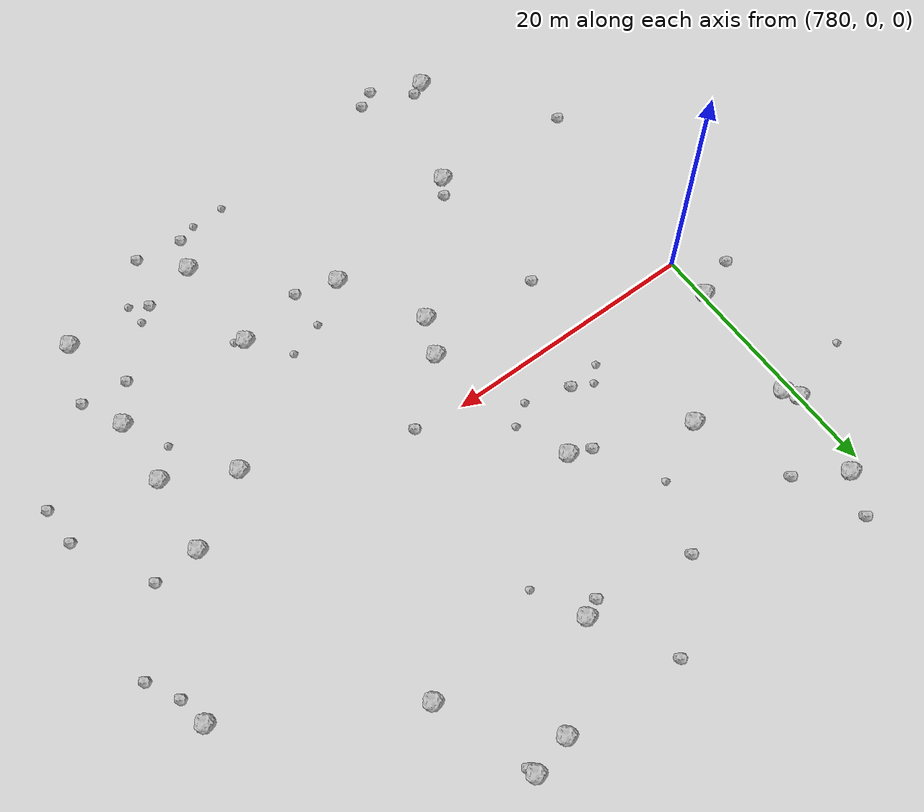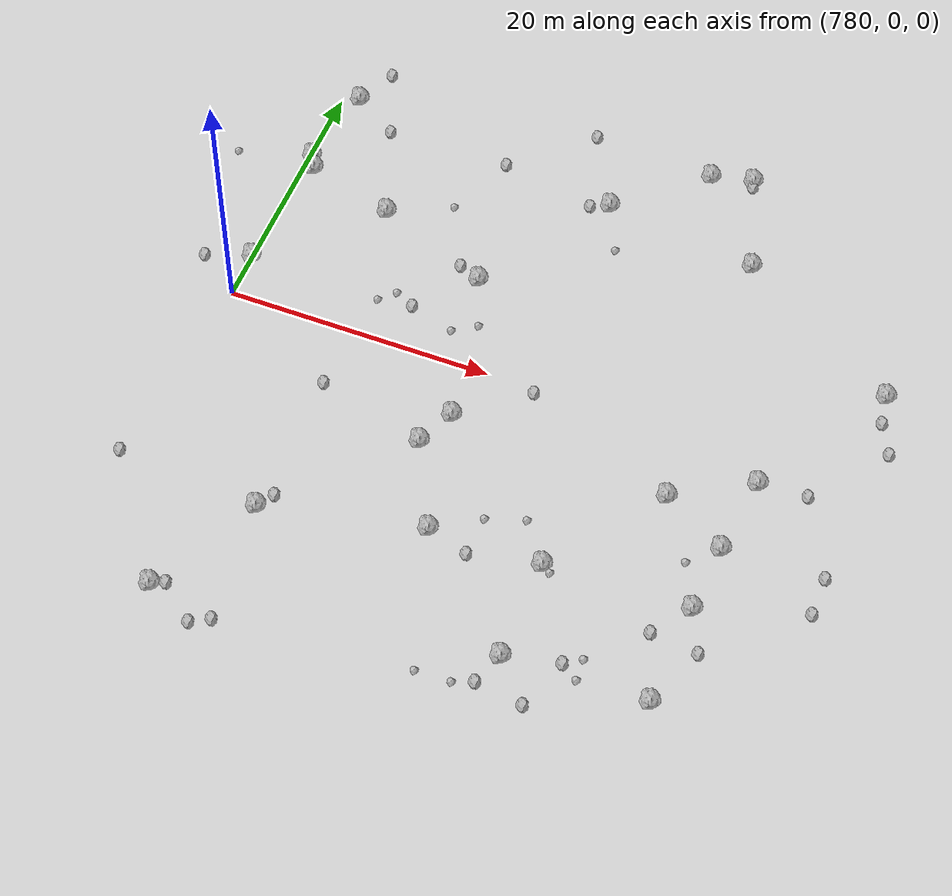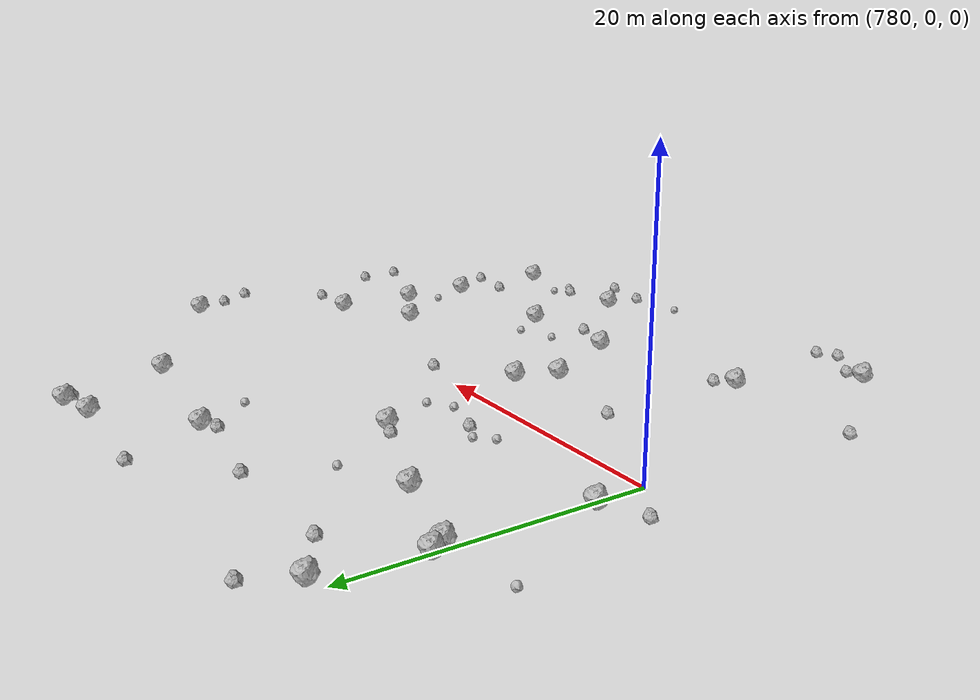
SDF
<sdf version="1.6">
 <world name="default">
  <include><uri>model://sun</uri></include>
  <model name="rock1_20_4">
   <include><uri>model://rock1</uri><pose>785.3664113170223 -24.90609424373964 0.5 0 0 0</pose></include>
  </model>
  <model name="rock1_20_5">
   <include><uri>model://rock1</uri><pose>809.5755338259577 -21.500096827385807 0.5 0 0 0</pose></include>
  </model>
  <model name="rock1_20_6">
   <include><uri>model://rock1</uri><pose>815.5084359711921 -5.317801663872885 0.5 0 0 0</pose></include>
  </model>
  <model name="rock1_20_7">
   <include><uri>model://rock1</uri><pose>820.0311126214174 -21.138334759973652 0.5 0 0 0</pose></include>
  </model>
  <model name="rock1_20_8">
   <include><uri>model://rock1</uri><pose>781.2812456146687 20.592740065764225 0.5 0 0 0</pose></include>
  </model>
  <model name="rock1_20_9">
   <include><uri>model://rock1</uri><pose>809.5288513660752 -13.730973836785545 0.5 0 0 0</pose></include>
  </model>
  <model name="rock1_20_10">
   <include><uri>model://rock1</uri><pose>821.0275776181239 -2.0304280691839622 0.5 0 0 0</pose></include>
  </model>
  <model name="rock1_20_11">
   <include><uri>model://rock1</uri><pose>814.4093221871572 16.122075776265177 0.5 0 0 0</pose></include>
  </model>
  <model name="rock1_20_12">
   <include><uri>model://rock1</uri><pose>797.8102732023145 -7.2851550865501125 0.5 0 0 0</pose></include>
  </model>
  <model name="rock1_20_13">
   <include><uri>model://rock1</uri><pose>799.0665224011852 -4.359351710954094 0.5 0 0 0</pose></include>
  </model>
  <model name="rock1_20_14">
   <include><uri>model://rock1</uri><pose>787.5282440145577 11.089126649374556 0.5 0 0 0</pose></include>
  </model>
  <model name="rock1_20_15">
   <include><uri>model://rock1</uri><pose>827.0752342238704 8.384848651333861 0.5 0 0 0</pose></include>
  </model>
  <model name="rock1_20_16">
   <include><uri>model://rock1</uri><pose>779.990604715093 3.5421797995980384 0.5 0 0 0</pose></include>
  </model>
  <model name="rock1_20_17">
   <include><uri>model://rock1</uri><pose>780.7776208121767 13.012453330870969 0.5 0 0 0</pose></include>
  </model>
  <model name="rock1_20_18">
   <include><uri>model://rock1</uri><pose>789.4445443507831 -16.48787520202778 0.5 0 0 0</pose></include>
  </model>
  <model name="rock1_20_19">
   <include><uri>model://rock1</uri><pose>802.7520912309554 17.695944848059014 0.5 0 0 0</pose></include>
  </model>
  <model name="rock1_20_20">
   <include><uri>model://rock1</uri><pose>780.1793979257385 14.061561354105798 0.5 0 0 0</pose></include>
  </model>
  <model name="rock1_20_21">
   <include><uri>model://rock1</uri><pose>820.1943020609858 -13.315769211444113 0.5 0 0 0</pose></include>
  </model>
  <model name="rock1_20_22">
   <include><uri>model://rock1</uri><pose>796.2751015303372 7.6207775359631 0.5 0 0 0</pose></include>
  </model>
  <model name="rock1_20_23">
   <include><uri>model://rock1</uri><pose>811.8993375612059 23.83425064384943 0.5 0 0 0</pose></include>
  </model>
  <model name="rock1_20_24">
   <include><uri>model://rock1</uri><pose>801.2047757072879 -13.851530420893859 0.5 0 0 0</pose></include>
  </model>
  <model name="rock1_20_25">
   <include><uri>model://rock1</uri><pose>820.4184531133516 -8.053508226025677 0.5 0 0 0</pose></include>
  </model>
  <model name="rock1_20_26">
   <include><uri>model://rock1</uri><pose>808.8246560881182 23.107849889350724 0.5 0 0 0</pose></include>
  </model>
  <model name="rock2_20_0">
   <include><uri>model://rock2</uri><pose>782.663475030177 23.697494224238028 0.3 0 0 0</pose></include>
  </model>
  <model name="rock2_20_1">
   <include><uri>model://rock2</uri><pose>789.5442368039654 -5.116071153389058 0.3 0 0 0</pose></include>
  </model>
  <model name="rock2_20_2">
   <include><uri>model://rock2</uri><pose>827.4833816388751 6.045950390518314 0.3 0 0 0</pose></include>
  </model>
  <model name="rock2_20_3">
   <include><uri>model://rock2</uri><pose>799.531370906511 23.640890415987748 0.3 0 0 0</pose></include>
  </model>
  <model name="rock2_20_4">
   <include><uri>model://rock2</uri><pose>827.8353362088625 -10.796368692050372 0.3 0 0 0</pose></include>
  </model>
  <model name="rock2_20_5">
   <include><uri>model://rock2</uri><pose>778.6363671343948 -15.678896722372075 0.3 0 0 0</pose></include>
  </model>
  <model name="rock2_20_6">
   <include><uri>model://rock2</uri><pose>828.7502015142902 3.6495335020542967 0.3 0 0 0</pose></include>
  </model>
  <model name="rock2_20_7">
   <include><uri>model://rock2</uri><pose>790.4589385786156 -25.940379830825453 0.3 0 0 0</pose></include>
  </model>
  <model name="rock2_20_8">
   <include><uri>model://rock2</uri><pose>801.3858533063518 17.076345799239462 0.3 0 0 0</pose></include>
  </model>
  <model name="rock2_20_9">
   <include><uri>model://rock2</uri><pose>789.106458493732 -26.716692467449356 0.3 0 0 0</pose></include>
  </model>
  <model name="rock2_20_10">
   <include><uri>model://rock2</uri><pose>824.6066446900599 -1.802866656626957 0.3 0 0 0</pose></include>
  </model>
  <model name="rock2_20_11">
   <include><uri>model://rock2</uri><pose>803.7584243975847 -0.48131525350903104 0.3 0 0 0</pose></include>
  </model>
  <model name="rock2_20_12">
   <include><uri>model://rock2</uri><pose>786.3638584498783 -24.43283990856549 0.3 0 0 0</pose></include>
  </model>
  <model name="rock2_20_13">
   <include><uri>model://rock2</uri><pose>794.1381495594459 18.542623896264118 0.3 0 0 0</pose></include>
  </model>
  <model name="rock2_20_14">
   <include><uri>model://rock2</uri><pose>812.302331408295 -24.48365458495924 0.3 0 0 0</pose></include>
  </model>
  <model name="rock2_20_15">
   <include><uri>model://rock2</uri><pose>813.6068657247522 -20.529956691085317 0.3 0 0 0</pose></include>
  </model>
  <model name="rock2_20_16">
   <include><uri>model://rock2</uri><pose>827.7735420375087 -7.765540184382548 0.3 0 0 0</pose></include>
  </model>
  <model name="rock2_20_17">
   <include><uri>model://rock2</uri><pose>794.5839654015907 8.310049329640215 0.3 0 0 0</pose></include>
  </model>
  <model name="rock2_20_18">
   <include><uri>model://rock2</uri><pose>790.2433724402215 -15.205071781187925 0.3 0 0 0</pose></include>
  </model>
  <model name="rock2_20_19">
   <include><uri>model://rock2</uri><pose>776.7448538533255 2.3873497594427064 0.3 0 0 0</pose></include>
  </model>
  <model name="rock2_20_20">
   <include><uri>model://rock2</uri><pose>808.7286641826511 -23.977490378126923 0.3 0 0 0</pose></include>
  </model>
  <model name="rock2_20_21">
   <include><uri>model://rock2</uri><pose>812.0414231772664 23.276999499951238 0.3 0 0 0</pose></include>
  </model>
  <model name="rock2_20_22">
   <include><uri>model://rock2</uri><pose>784.7889211631843 18.358533901453384 0.3 0 0 0</pose></include>
  </model>
  <model name="rock2_20_23">
   <include><uri>model://rock2</uri><pose>818.2241965835905 -16.134819606716817 0.3 0 0 0</pose></include>
  </model>
  <model name="rock2_20_24">
   <include><uri>model://rock2</uri><pose>821.7414271267389 -16.50722193210083 0.3 0 0 0</pose></include>
  </model>
  <model name="rock2_20_25">
   <include><uri>model://rock2</uri><pose>804.3948402533981 -14.818549113431851 0.3 0 0 0</pose></include>
  </model>
  <model name="rock2_20_26">
   <include><uri>model://rock2</uri><pose>792.7301925387001 3.569279600832999 0.3 0 0 0</pose></include>
  </model>
  <model name="rock3_20_0">
   <include><uri>model://rock3</uri><pose>804.6252539498273 -24.64015214187722 0.2 0 0 0</pose></include>
  </model>
  <model name="rock3_20_1">
   <include><uri>model://rock3</uri><pose>797.832625771453 3.641792008785707 0.2 0 0 0</pose></include>
  </model>
  <model name="rock3_20_2">
   <include><uri>model://rock3</uri><pose>814.8920562035029 -21.41178081867713 0.2 0 0 0</pose></include>
  </model>
  <model name="rock3_20_3">
   <include><uri>model://rock3</uri><pose>804.4651643138145 -11.724985053533949 0.2 0 0 0</pose></include>
  </model>
  <model name="rock3_20_4">
   <include><uri>model://rock3</uri><pose>796.1640974270506 2.534370397248807 0.2 0 0 0</pose></include>
  </model>
  <model name="rock3_20_5">
   <include><uri>model://rock3</uri><pose>790.1230979491828 3.209650316554672 0.2 0 0 0</pose></include>
  </model>
  <model name="rock3_20_6">
   <include><uri>model://rock3</uri><pose>774.8064341569446 12.464525388029543 0.2 0 0 0</pose></include>
  </model>
  <model name="rock3_20_7">
   <include><uri>model://rock3</uri><pose>810.21712769633 -14.18667483930472 0.2 0 0 0</pose></include>
  </model>
  <model name="rock3_20_8">
   <include><uri>model://rock3</uri><pose>792.0213196170959 13.307106619734803 0.2 0 0 0</pose></include>
  </model>
  <model name="rock3_20_9">
   <include><uri>model://rock3</uri><pose>807.240203707925 -24.555149648111776 0.2 0 0 0</pose></include>
  </model>
  <model name="rock3_20_10">
   <include><uri>model://rock3</uri><pose>804.5641937506084 13.831369075383734 0.2 0 0 0</pose></include>
  </model>
  <model name="rock3_20_11">
   <include><uri>model://rock3</uri><pose>791.1864189403167 4.29630197805502 0.2 0 0 0</pose></include>
  </model>
  <model name="rock3_20_12">
   <include><uri>model://rock3</uri><pose>818.5050739496216 -9.983358084676897 0.2 0 0 0</pose></include>
  </model>
  <model name="rock3_20_13">
   <include><uri>model://rock3</uri><pose>807.2349721708079 -10.762361216964372 0.2 0 0 0</pose></include>
  </model>
  <model name="rock3_20_14">
   <include><uri>model://rock3</uri><pose>814.772903479939 -19.724473948392106 0.2 0 0 0</pose></include>
  </model>
 </world>
</sdf>
